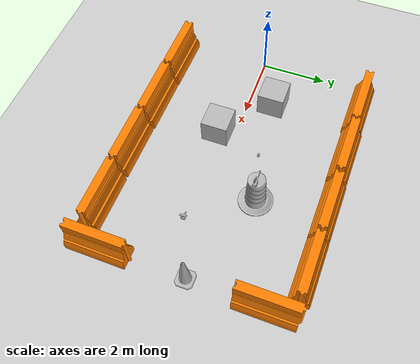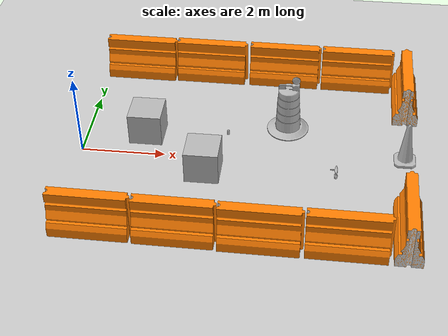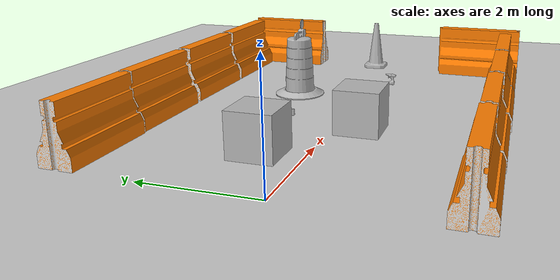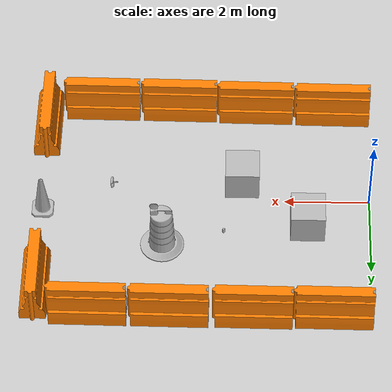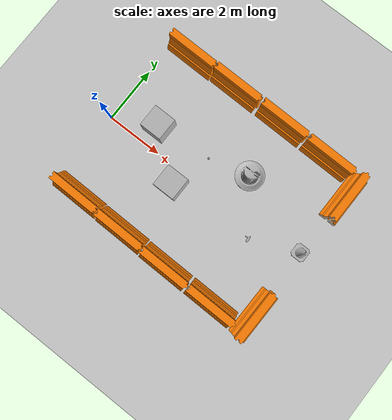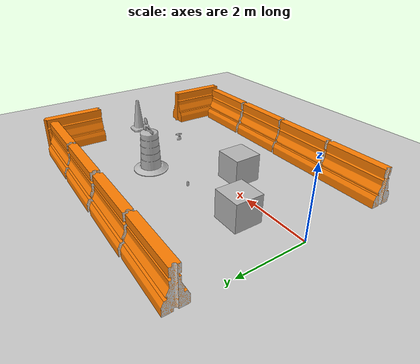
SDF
<sdf version="1.6">
 <world name="default">
  <light name="sun" type="directional">
   <pose>0 0 10 0 -0 0</pose>
   <diffuse>0.8 0.8 0.8 1</diffuse>
   <specular>0.2 0.2 0.2 1</specular>
   <attenuation>
    <range>1000</range>
    <constant>0.9</constant>
    <linear>0.01</linear>
    <quadratic>0.001</quadratic>
   </attenuation>
   <direction>-0.5 0.1 -0.9</direction>
  </light>
  <model name="ground_plane">
   <static>1</static>
   <link name="link">
    <collision name="collision">
     <geometry><plane><normal>0 0 1</normal><size>100 100</size></plane></geometry>
     <surface><friction><ode><mu>100</mu><mu2>50</mu2></ode></friction></surface>
    </collision>
    <visual name="visual">
     <cast_shadows>0</cast_shadows>
     <geometry><plane><normal>0 0 1</normal><size>100 100</size></plane></geometry>
     <material>
      <script><uri>file://media/materials/scripts/gazebo.material</uri><name>Gazebo/Grey</name></script>
     </material>
    </visual>
   </link>
  </model>
  <gravity>0 0 -9.8</gravity>
  <magnetic_field>6e-06 2.3e-05 -4.2e-05</magnetic_field>
  <atmosphere type="adiabatic"/>
  <physics name="default_physics" default="0" type="ode">
   <max_step_size>0.001</max_step_size>
   <real_time_factor>1</real_time_factor>
   <real_time_update_rate>1000</real_time_update_rate>
  </physics>
  <scene><ambient>0.4 0.4 0.4 1</ambient><background>0.7 0.7 0.7 1</background><shadows>1</shadows></scene>
  <audio><device>default</device></audio>
  <spherical_coordinates>
   <surface_model>EARTH_WGS84</surface_model>
   <latitude_deg>0</latitude_deg>
   <longitude_deg>0</longitude_deg>
   <elevation>0</elevation>
   <heading_deg>0</heading_deg>
  </spherical_coordinates>
  <model name="number1">
   <pose>1.47234 0.740521 0.4 0 -0 0</pose>
   <static>1</static>
   <link name="link">
    <visual name="visual">
     <geometry><mesh><uri>model://number1/meshes/number.dae</uri></mesh></geometry>
     <material>
      <script>
       <uri>model://number1/materials/scripts</uri>
       <uri>model://number1/materials/textures</uri>
       <name>Number/One</name>
      </script>
     </material>
    </visual>
   </link>
  </model>
  <model name="number2">
   <pose>3.00847 -0.510947 0.4 0 -0 0</pose>
   <static>1</static>
   <link name="link">
    <visual name="visual">
     <geometry><mesh><uri>model://number1/meshes/number.dae</uri></mesh></geometry>
     <material>
      <script>
       <uri>model://number1/materials/scripts</uri>
       <uri>model://number1/materials/textures</uri>
       <name>Number/One</name>
      </script>
     </material>
    </visual>
   </link>
  </model>
  <model name="Construction Barrel">
   <link name="link">
    <inertial>
     <pose>0 0 0.4 0 -0 0</pose>
     <mass>500</mass>
     <inertia><ixx>51.2096</ixx><iyy>51.2096</iyy><izz>25</izz><ixy>0</ixy><ixz>0</ixz><iyz>0</iyz></inertia>
    </inertial>
    <collision name="collision">
     <geometry><mesh><uri>model://construction_barrel/meshes/construction_barrel.dae</uri></mesh></geometry>
    </collision>
    <visual name="visual">
     <geometry><mesh><uri>model://construction_barrel/meshes/construction_barrel.dae</uri></mesh></geometry>
    </visual>
   </link>
   <pose>4.86015 1.30437 1e-06 3e-06 2e-06 -2.9e-05</pose>
  </model>
  <model name="drill">
   <link name="link">
    <inertial>
     <pose>-0.00637 -0.008 0.13254 0 -0 0</pose>
     <inertia>
      <ixx>0.0133113</ixx>
      <ixy>-0.00030365</ixy>
      <ixz>-0.00034148</ixz>
      <iyy>0.0115766</iyy>
      <iyz>0.00088073</iyz>
      <izz>0.00378028</izz>
     </inertia>
     <mass>1.50252</mass>
    </inertial>
    <collision name="collision">
     <pose>0 0 -0.09 0 -0 0</pose>
     <geometry><mesh><uri>model://cordless_drill/meshes/cordless_drill.stl</uri></mesh></geometry>
     <surface><contact><ode><max_vel>0.1</max_vel><min_depth>0.001</min_depth></ode></contact></surface>
    </collision>
    <visual name="visual">
     <pose>0 0 -0.09 0 -0 0</pose>
     <geometry><mesh><uri>model://cordless_drill/meshes/cordless_drill.dae</uri></mesh></geometry>
    </visual>
   </link>
   <pose>6.09555 -0.403634 -0.002072 -1.2e-05 -0.000104 -0.002125</pose>
  </model>
  <model name="Construction Cone">
   <link name="link">
    <collision name="collision">
     <geometry>
      <mesh><scale>10 10 10</scale><uri>model://construction_cone/meshes/construction_cone.dae</uri></mesh>
     </geometry>
    </collision>
    <visual name="visual">
     <geometry>
      <mesh><scale>10 10 10</scale><uri>model://construction_cone/meshes/construction_cone.dae</uri></mesh>
     </geometry>
    </visual>
    <inertial>
     <inertia><ixx>1</ixx><ixy>0</ixy><ixz>0</ixz><iyy>1</iyy><iyz>0</iyz><izz>1</izz></inertia>
     <mass>1</mass>
    </inertial>
   </link>
   <pose>7.70302 0.317223 -0 0 -0 0</pose>
  </model>
  <model name="coke_can">
   <link name="link">
    <inertial>
     <pose>0 0 0.06 0 -0 0</pose>
     <mass>0.39</mass>
     <inertia>
      <ixx>0.00055575</ixx>
      <ixy>0</ixy>
      <ixz>0</ixz>
      <iyy>0.00055575</iyy>
      <iyz>0</iyz>
      <izz>0.0001755</izz>
     </inertia>
    </inertial>
    <collision name="collision">
     <pose>0.003937 0.004724 -0.18 0 -0 0</pose>
     <geometry><mesh><uri>model://coke_can/meshes/coke_can.dae</uri></mesh></geometry>
     <surface>
      <friction><ode><mu>1</mu><mu2>1</mu2></ode></friction>
      <contact><ode><kp>1e+07</kp><kd>1</kd><min_depth>0.001</min_depth><max_vel>0.1</max_vel></ode></contact>
     </surface>
    </collision>
    <visual name="visual">
     <pose>0.003937 0.004724 -0.18 0 -0 0</pose>
     <geometry><mesh><uri>model://coke_can/meshes/coke_can.dae</uri></mesh></geometry>
    </visual>
   </link>
   <pose>3.42787 0.915096 -0.003472 -0.036723 0.008272 -0.000704</pose>
  </model>
  <model name="drc_practice_organge_jersey_barrier">
   <static>1</static>
   <link name="link">
    <visual name="visual">
     <geometry>
      <mesh><uri>model://drc_practice_orange_jersey_barrier/meshes/jersey_barrier.dae</uri></mesh>
     </geometry>
    </visual>
    <collision name="collision">
     <geometry>
      <mesh><uri>model://drc_practice_orange_jersey_barrier/meshes/jersey_barrier.dae</uri></mesh>
     </geometry>
    </collision>
   </link>
   <pose>0.88413 3.32367 0 0 -0 1.56422</pose>
  </model>
  <model name="drc_practice_organge_jersey_barrier_clone">
   <static>1</static>
   <link name="link">
    <visual name="visual">
     <geometry>
      <mesh><uri>model://drc_practice_orange_jersey_barrier/meshes/jersey_barrier.dae</uri></mesh>
     </geometry>
    </visual>
    <collision name="collision">
     <geometry>
      <mesh><uri>model://drc_practice_orange_jersey_barrier/meshes/jersey_barrier.dae</uri></mesh>
     </geometry>
    </collision>
   </link>
   <pose>2.71724 3.33398 0 0 -0 1.56422</pose>
  </model>
  <model name="drc_practice_organge_jersey_barrier_clone_0">
   <static>1</static>
   <link name="link">
    <visual name="visual">
     <geometry>
      <mesh><uri>model://drc_practice_orange_jersey_barrier/meshes/jersey_barrier.dae</uri></mesh>
     </geometry>
    </visual>
    <collision name="collision">
     <geometry>
      <mesh><uri>model://drc_practice_orange_jersey_barrier/meshes/jersey_barrier.dae</uri></mesh>
     </geometry>
    </collision>
   </link>
   <pose>4.62295 3.32852 0 0 -0 1.56422</pose>
  </model>
  <model name="drc_practice_organge_jersey_barrier_clone_1">
   <static>1</static>
   <link name="link">
    <visual name="visual">
     <geometry>
      <mesh><uri>model://drc_practice_orange_jersey_barrier/meshes/jersey_barrier.dae</uri></mesh>
     </geometry>
    </visual>
    <collision name="collision">
     <geometry>
      <mesh><uri>model://drc_practice_orange_jersey_barrier/meshes/jersey_barrier.dae</uri></mesh>
     </geometry>
    </collision>
   </link>
   <pose>6.49061 3.31136 0 0 -0 1.56422</pose>
  </model>
  <model name="drc_practice_organge_jersey_barrier_clone_2">
   <static>1</static>
   <link name="link">
    <visual name="visual">
     <geometry>
      <mesh><uri>model://drc_practice_orange_jersey_barrier/meshes/jersey_barrier.dae</uri></mesh>
     </geometry>
    </visual>
    <collision name="collision">
     <geometry>
      <mesh><uri>model://drc_practice_orange_jersey_barrier/meshes/jersey_barrier.dae</uri></mesh>
     </geometry>
    </collision>
   </link>
   <pose>0.834103 -2.66228 0 0 -0 1.56422</pose>
  </model>
  <model name="drc_practice_organge_jersey_barrier_clone_3">
   <static>1</static>
   <link name="link">
    <visual name="visual">
     <geometry>
      <mesh><uri>model://drc_practice_orange_jersey_barrier/meshes/jersey_barrier.dae</uri></mesh>
     </geometry>
    </visual>
    <collision name="collision">
     <geometry>
      <mesh><uri>model://drc_practice_orange_jersey_barrier/meshes/jersey_barrier.dae</uri></mesh>
     </geometry>
    </collision>
   </link>
   <pose>2.68294 -2.6949 0 0 -0 1.56422</pose>
  </model>
  <model name="drc_practice_organge_jersey_barrier_clone_4">
   <static>1</static>
   <link name="link">
    <visual name="visual">
     <geometry>
      <mesh><uri>model://drc_practice_orange_jersey_barrier/meshes/jersey_barrier.dae</uri></mesh>
     </geometry>
    </visual>
    <collision name="collision">
     <geometry>
      <mesh><uri>model://drc_practice_orange_jersey_barrier/meshes/jersey_barrier.dae</uri></mesh>
     </geometry>
    </collision>
   </link>
   <pose>4.52391 -2.73605 0 0 -0 1.56422</pose>
  </model>
  <model name="drc_practice_organge_jersey_barrier_clone_5">
   <static>1</static>
   <link name="link">
    <visual name="visual">
     <geometry>
      <mesh><uri>model://drc_practice_orange_jersey_barrier/meshes/jersey_barrier.dae</uri></mesh>
     </geometry>
    </visual>
    <collision name="collision">
     <geometry>
      <mesh><uri>model://drc_practice_orange_jersey_barrier/meshes/jersey_barrier.dae</uri></mesh>
     </geometry>
    </collision>
   </link>
   <pose>6.38464 -2.75141 0 0 -0 1.56422</pose>
  </model>
  <model name="drc_practice_organge_jersey_barrier_clone_6">
   <static>1</static>
   <link name="link">
    <visual name="visual">
     <geometry>
      <mesh><uri>model://drc_practice_orange_jersey_barrier/meshes/jersey_barrier.dae</uri></mesh>
     </geometry>
    </visual>
    <collision name="collision">
     <geometry>
      <mesh><uri>model://drc_practice_orange_jersey_barrier/meshes/jersey_barrier.dae</uri></mesh>
     </geometry>
    </collision>
   </link>
   <pose>7.69353 -2.19069 0 0 -0 3.13415</pose>
  </model>
  <model name="drc_practice_organge_jersey_barrier_clone_7">
   <static>1</static>
   <link name="link">
    <visual name="visual">
     <geometry>
      <mesh><uri>model://drc_practice_orange_jersey_barrier/meshes/jersey_barrier.dae</uri></mesh>
     </geometry>
    </visual>
    <collision name="collision">
     <geometry>
      <mesh><uri>model://drc_practice_orange_jersey_barrier/meshes/jersey_barrier.dae</uri></mesh>
     </geometry>
    </collision>
   </link>
   <pose>7.74124 2.57249 0 0 -0 3.14061</pose>
  </model>
 </world>
</sdf>
